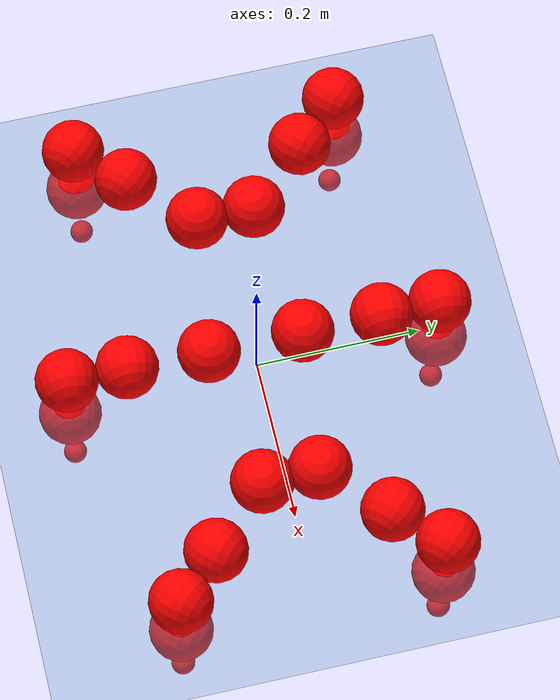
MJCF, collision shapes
<mujoco model="Golem">
  <compiler angle="radian" assetdir="assets" balanceinertia="true" inertiafromgeom="false"/>

  <option timestep="0.005" density="1.2" viscosity="2e-05"/>

  <size nkey="1"/>

  <visual>
    <quality shadowsize="8192"/>
    <map shadowclip="0.5"/>
  </visual>

  <default>
    <default class="/">
      <joint armature="0.01" damping="0.01" frictionloss="0.01"/>
      <geom contype="0" conaffinity="0" group="1" solref="-1000 -80"/>
      <site size="0.01 0.005 0.005" group="5"/>
      <general forcelimited="true" biastype="affine" gainprm="25" biasprm="0 -25 -0.5"/>
      <default class="visual">
        <geom type="mesh" group="2"/>
      </default>
      <default class="collision">
        <geom group="3"/>
      </default>
      <default class="foot">
        <geom size="0.01 0 0" condim="6" group="4" priority="1" solimp="0.015 1 0.01"/>
      </default>
      <default class="reward_collision_sphere">
        <geom group="5" rgba="1 0 0 1"/>
      </default>
    </default>
  </default>

  <asset>
    <texture type="skybox" colorspace="auto" name="//unnamed_texture_0" builtin="gradient" rgb1="0.95 0.95 0.95" rgb2="0.95 0.95 0.95" width="100" height="600"/>
    <texture type="2d" colorspace="auto" name="texplane" builtin="checker" rgb1="0.345 0.575 0.748" rgb2="0.345 0.575 0.748" markrgb="1 1 1" width="512" height="512"/>
    <material name="MatPlane" class="/" texture="texplane" texuniform="true" texrepeat="2 2" specular="0.9"/>
    <mesh name="body" class="/" file="body.stl" scale="0.001 0.001 0.001"/>
    <mesh name="coxa" class="/" file="coxa.stl" scale="0.001 0.001 0.001"/>
    <mesh name="femur" class="/" file="femur.stl" scale="0.001 0.001 0.001"/>
    <mesh name="tibia" class="/" file="tibia.stl" scale="0.001 0.001 0.001"/>
    <mesh name="tarsus" class="/" file="tarsus.stl" scale="0.001 0.001 0.001"/>
  </asset>

  <worldbody>
    <geom name="floor" class="/" size="100 100 0.125" type="plane" group="0" material="MatPlane"/>
    <light name="toplight_shadow" class="/" pos="0 0 5" dir="0.0990148 0.0990148 -0.990148" type="directional" ambient="0.04 0.04 0.04" diffuse="0.55 0.55 0.55" specular="0.12 0.12 0.12"/>
    <light name="toplight_fill" class="/" pos="0 0 5" dir="0.0990148 0.0990148 -0.990148" type="directional" castshadow="false" ambient="0.04 0.04 0.04" diffuse="0.3 0.3 0.3" specular="0.08 0.08 0.08"/>
    <body name="trunk" pos="-0.00094629 0.00108249 -0.000627348" quat="1 -4.90972e-05 0.00011193 0.000105662">
      <inertial pos="0.00113811 -0.000866427 -0.00525701" quat="0.999998 -0.00185594 -0.000807559 -0.000453668" mass="3.19237" diaginertia="0.0170761 0.00154795 0.0123792"/>
      <joint name="//unnamed_joint_0" type="free"/>
      <geom name="//unnamed_geom_1" class="/" pos="0 0 0.0669583" quat="1 0 0 0" type="mesh" rgba="0.9 0.9 0.9 1" mesh="body"/>
      <site name="imu" class="/" pos="0.141599 0.00201834 0.101992" size="0.00947842"/>
      <camera name="track" class="/" pos="0 -1.37556 0" quat="0.707107 0.707107 0 0" mode="trackcom"/>
      <camera name="ego_camera" class="/" pos="0.144238 0 0.104622" quat="-0.5 -0.5 0.5 0.5"/>
      <body name="coxa_RR" pos="-0.197595 -0.0572413 0.068999" quat="0.382824 -0.000242176 -4.04263e-05 -0.923821">
        <inertial pos="-0.000386833 -0.0015499 0.00199814" quat="0.999991 -0.00404975 -0.00128564 -0.000595822" mass="0.171877" diaginertia="0.0169308 0.00156324 0.0125467"/>
        <joint name="coxa_joint_RR" class="/" pos="0 0 0" axis="-0.00229255 -0.00182339 -0.999996" range="-3.13512 3.13449" armature="0.0095332" damping="0.00715999" frictionloss="0.00927657"/>
        <geom name="//unnamed_geom_2" class="/" type="mesh" rgba="0.2 0.2 0.2 1" mesh="coxa"/>
        <geom name="//unnamed_geom_3" class="reward_collision_sphere" size="0.0379137" pos="-0.0332856 0 0"/>
        <body name="femur_RR" pos="0.0679562 0.000800193 -0.00106778" quat="0.499863 -0.500087 0.499922 0.500128">
          <inertial pos="-0.00042844 0.000336045 0.000271053" quat="1 6.66891e-05 0.000399 -0.000196182" mass="0.169354" diaginertia="0.0167271 0.00153562 0.0124903"/>
          <joint name="femur_joint_RR" class="/" pos="0 0 0" axis="0.00148454 -7.71302e-05 -0.999999" range="-3.1323 3.12465" armature="0.00955448" damping="0.00433603" frictionloss="0.00945356"/>
          <geom name="//unnamed_geom_4" class="/" type="mesh" rgba="0.9 0.9 0.9 1" mesh="femur"/>
          <geom name="//unnamed_geom_5" class="reward_collision_sphere" size="0.0379137"/>
          <body name="tibia_RR" pos="0.000522225 -0.0755575 0.00108052" quat="8.47926e-05 1 -4.52414e-05 -0.000253934">
            <inertial pos="-0.0010082 -0.000510265 -0.000275332" quat="0.999992 -0.0037485 -0.000557808 0.000839938" mass="0.168065" diaginertia="0.0167056 0.0015281 0.0126709"/>
            <joint name="tibia_joint_RR" class="/" pos="0 0 0" axis="0.000278223 3.40597e-05 1" range="-3.12054 3.10035" armature="0.00937853" damping="0.00555228" frictionloss="0.00965628"/>
            <geom name="//unnamed_geom_6" class="/" type="mesh" rgba="0.2 0.2 0.2 1" mesh="tibia"/>
            <geom name="//unnamed_geom_7" class="reward_collision_sphere" size="0.0379137"/>
            <body name="tarsus_RR" pos="0.0977327 -0.000531838 -0.000798525" quat="1 7.63228e-06 0.000152853 -9.52154e-05">
              <inertial pos="0.0684407 0.00263701 -0.000650108" quat="0.500846 0.496649 0.503053 0.499431" mass="0.172089" diaginertia="0.0172041 0.00157279 0.0127044"/>
              <joint name="tarsus_joint_RR" class="/" pos="0 0 0" axis="-0.000810413 -0.00818506 0.999966" range="-3.10717 3.14437" armature="0.00905724" damping="0.0430329" frictionloss="0.00907055"/>
              <geom name="//unnamed_geom_8" class="/" type="mesh" rgba="0.9 0.9 0.9 1" mesh="tarsus"/>
              <geom name="foot_1" class="foot" size="0.00904162" pos="0.124266 0 0" quat="0 -0.707107 0 0.707107"/>
              <geom name="//unnamed_geom_10" class="reward_collision_sphere" size="0.0379137"/>
              <geom name="//unnamed_geom_11" class="reward_collision_sphere" size="0.0142176" pos="0.119273 0 0"/>
              <site name="foot_1" class="foot" pos="0.124266 0 0" quat="0 -0.707107 0 0.707107" size="0.00947842"/>
            </body>
          </body>
        </body>
      </body>
      <body name="coxa_RM" pos="-0.000956823 -0.0917069 0.066477" quat="0.707055 -1.47191e-05 9.42287e-05 -0.707158">
        <inertial pos="-0.000212646 -0.000843068 -0.000350366" quat="1 -0.000967925 -0.000199132 -0.000144422" mass="0.170185" diaginertia="0.0167323 0.00153254 0.0124736"/>
        <joint name="coxa_joint_RM" class="/" pos="0 0 0" axis="0.00341723 -0.00405996 -0.999986" range="-3.13746 3.15011" armature="0.00952697" damping="0.00827235" frictionloss="0.00862228"/>
        <geom name="//unnamed_geom_12" class="/" type="mesh" rgba="0.2 0.2 0.2 1" mesh="coxa"/>
        <geom name="//unnamed_geom_13" class="reward_collision_sphere" size="0.0379137" pos="-0.0332856 0 0"/>
        <body name="femur_RM" pos="0.0652892 -0.0012738 0.000611122" quat="0.499852 -0.500002 0.50003 0.500116">
          <inertial pos="-0.000168312 0.00041332 0.000166609" quat="0.999999 -0.00130901 3.56026e-05 0.000418048" mass="0.16834" diaginertia="0.0164695 0.0015444 0.0124259"/>
          <joint name="femur_joint_RM" class="/" pos="0 0 0" axis="0.00138563 -0.000388071 -0.999999" range="-3.14561 3.15537" armature="0.00922079" damping="0" frictionloss="0.00953085"/>
          <geom name="//unnamed_geom_14" class="/" type="mesh" rgba="0.9 0.9 0.9 1" mesh="femur"/>
          <geom name="//unnamed_geom_15" class="reward_collision_sphere" size="0.0379137"/>
          <body name="tibia_RM" pos="0.000990289 -0.0724937 -0.000217247" quat="-3.79517e-05 1 -1.15536e-05 1.17133e-05">
            <inertial pos="-0.00159567 -0.0020081 -0.00095592" quat="0.999966 -0.00715841 0.000205228 0.00397029" mass="0.169478" diaginertia="0.0168182 0.00153752 0.0122747"/>
            <joint name="tibia_joint_RM" class="/" pos="0 0 0" axis="-4.02937e-05 -2.90155e-05 1" range="-3.13747 3.11929" armature="0.00905888" damping="0.011107" frictionloss="0.00915509"/>
            <geom name="//unnamed_geom_16" class="/" type="mesh" rgba="0.2 0.2 0.2 1" mesh="tibia"/>
            <geom name="//unnamed_geom_17" class="reward_collision_sphere" size="0.0379137"/>
            <body name="tarsus_RM" pos="0.0977385 0.000893633 -2.35276e-05" quat="1 -8.7365e-05 -0.000120637 -2.19436e-05">
              <inertial pos="0.0666665 0.000107645 1.18162e-05" quat="0.499669 0.501067 0.501203 0.498055" mass="0.169646" diaginertia="0.0165364 0.00152709 0.0124884"/>
              <joint name="tarsus_joint_RM" class="/" pos="0 0 0" axis="1.64883e-05 -8.44908e-05 1" range="-3.14018 3.1427" armature="0.00889714" damping="0.00639293" frictionloss="0.00972874"/>
              <geom name="//unnamed_geom_18" class="/" type="mesh" rgba="0.9 0.9 0.9 1" mesh="tarsus"/>
              <geom name="foot_2" class="foot" size="0.00948135" pos="0.124266 0 0" quat="0 -0.707107 0 0.707107"/>
              <geom name="//unnamed_geom_20" class="reward_collision_sphere" size="0.0379137"/>
              <geom name="//unnamed_geom_21" class="reward_collision_sphere" size="0.0142176" pos="0.119273 0 0"/>
              <site name="foot_2" class="foot" pos="0.124266 0 0" quat="0 -0.707107 0 0.707107" size="0.00947842"/>
            </body>
          </body>
        </body>
      </body>
      <body name="coxa_RF" pos="0.197814 -0.0583718 0.0663804" quat="0.923935 -7.24699e-05 -6.14694e-05 -0.382549">
        <inertial pos="0.00101437 -4.25626e-05 0.000124786" quat="0.999997 0.00100431 0.000637642 0.00213211" mass="0.171311" diaginertia="0.0171618 0.00154285 0.0124176"/>
        <joint name="coxa_joint_RF" class="/" pos="0 0 0" axis="0.00130279 -0.000443733 -0.999999" stiffness="0.000997702" range="-3.12714 3.12711" armature="0.00993865" damping="0.00824276" frictionloss="0.0092532"/>
        <geom name="//unnamed_geom_22" class="/" type="mesh" rgba="0.2 0.2 0.2 1" mesh="coxa"/>
        <geom name="//unnamed_geom_23" class="reward_collision_sphere" size="0.0379137" pos="-0.0332856 0 0"/>
        <body name="femur_RF" pos="0.0671674 -0.000532036 -0.00161208" quat="0.499779 -0.500104 0.499923 0.500194">
          <inertial pos="-0.000609476 -0.000293929 -0.000180116" quat="0.999996 0.0020704 -0.00191647 -0.000390537" mass="0.169589" diaginertia="0.016912 0.00156387 0.0124551"/>
          <joint name="femur_joint_RF" class="/" pos="0 0 0" axis="-0.000988933 0.000885618 -0.999999" range="-3.12272 3.13774" armature="0.00935227" damping="0" frictionloss="0.00904954"/>
          <geom name="//unnamed_geom_24" class="/" type="mesh" rgba="0.9 0.9 0.9 1" mesh="femur"/>
          <geom name="//unnamed_geom_25" class="reward_collision_sphere" size="0.0379137"/>
          <body name="tibia_RF" pos="-0.000170242 -0.0735183 -0.00102506" quat="4.51243e-05 1 2.14834e-05 -1.63541e-05">
            <inertial pos="-0.000836805 -3.07044e-05 -0.00032095" quat="0.999996 0.00201252 -0.00217646 0.000238349" mass="0.170835" diaginertia="0.0172266 0.0015544 0.012603"/>
            <joint name="tibia_joint_RF" class="/" pos="0 0 0" axis="0.000202111 0.00021287 1" range="-3.12757 3.13945" armature="0.00906142" damping="0.0127247" frictionloss="0.009284"/>
            <geom name="//unnamed_geom_26" class="/" type="mesh" rgba="0.2 0.2 0.2 1" mesh="tibia"/>
            <geom name="//unnamed_geom_27" class="reward_collision_sphere" size="0.0379137"/>
            <body name="tarsus_RF" pos="0.0965973 0.000865496 0.00138339" quat="1 -0.000278148 -0.000593082 0.000316403">
              <inertial pos="0.0665073 -0.00129729 0.000187223" quat="0.50666 0.494691 0.501392 0.497175" mass="0.169117" diaginertia="0.0170245 0.00150166 0.0124886"/>
              <joint name="tarsus_joint_RF" class="/" pos="0 0 0" axis="-0.00163536 0.002698 0.999995" range="-3.11152 3.12753" armature="0.0103938" damping="0" frictionloss="0.00946208"/>
              <geom name="//unnamed_geom_28" class="/" type="mesh" rgba="0.9 0.9 0.9 1" mesh="tarsus"/>
              <geom name="foot_3" class="foot" size="0.00980443" pos="0.124266 0 0" quat="0 -0.707107 0 0.707107"/>
              <geom name="//unnamed_geom_30" class="reward_collision_sphere" size="0.0379137"/>
              <geom name="//unnamed_geom_31" class="reward_collision_sphere" size="0.0142176" pos="0.119273 0 0"/>
              <site name="foot_3" class="foot" pos="0.124266 0 0" quat="0 -0.707107 0 0.707107" size="0.00947842"/>
            </body>
          </body>
        </body>
      </body>
      <body name="coxa_LR" pos="-0.196971 0.0595691 0.0687906" quat="0.382641 -0.000633311 5.54592e-05 0.923897">
        <inertial pos="0.000809626 -0.00193347 -0.000439842" quat="0.999998 0.00121492 0.000159779 -0.00134228" mass="0.167433" diaginertia="0.0165624 0.00153411 0.0122485"/>
        <joint name="coxa_joint_LR" class="/" pos="0 0 0" axis="0.00226659 0.000702551 -0.999997" range="-3.11956 3.167" armature="0.0089282" damping="0.0075325" frictionloss="0.00929533"/>
        <geom name="//unnamed_geom_32" class="/" type="mesh" rgba="0.2 0.2 0.2 1" mesh="coxa"/>
        <geom name="//unnamed_geom_33" class="reward_collision_sphere" size="0.0379137" pos="-0.0332856 0 0"/>
        <body name="femur_LR" pos="0.0690928 -0.00180825 -0.00108227" quat="0.50002 -0.50003 0.499936 0.500014">
          <inertial pos="-0.000824222 0.000100786 -0.000337235" quat="0.999975 -0.00198231 0.00677088 0.000402548" mass="0.170933" diaginertia="0.0167849 0.00153245 0.0127709"/>
          <joint name="femur_joint_LR" class="/" pos="0 0 0" axis="0.00269395 0.000908099 0.999996" range="-3.10344 3.13145" armature="0.00919053" damping="0.00499293" frictionloss="0.00922895"/>
          <geom name="//unnamed_geom_34" class="/" type="mesh" rgba="0.9 0.9 0.9 1" mesh="femur"/>
          <geom name="//unnamed_geom_35" class="reward_collision_sphere" size="0.0379137"/>
          <body name="tibia_LR" pos="-9.88314e-05 -0.0754192 -0.00176137" quat="0.000398067 1 -0.000279607 1.49758e-05">
            <inertial pos="-0.000578214 -0.00141367 0.000361512" quat="0.999995 -0.00140774 -0.00228552 -0.00180557" mass="0.169833" diaginertia="0.0166836 0.0015149 0.0124987"/>
            <joint name="tibia_joint_LR" class="/" pos="0 0 0" axis="-0.00310375 -4.48639e-05 -0.999995" range="-3.14724 3.12425" armature="0.00977633" damping="0" frictionloss="0.00922578"/>
            <geom name="//unnamed_geom_36" class="/" type="mesh" rgba="0.2 0.2 0.2 1" mesh="tibia"/>
            <geom name="//unnamed_geom_37" class="reward_collision_sphere" size="0.0379137"/>
            <body name="tarsus_LR" pos="0.0986738 0.000769544 0.000307927" quat="1 0.000105275 -2.223e-06 -0.000360354">
              <inertial pos="0.066951 8.92232e-05 0.00030072" quat="0.499 0.500198 0.501615 0.499182" mass="0.168115" diaginertia="0.0166606 0.00152732 0.0123688"/>
              <joint name="tarsus_joint_LR" class="/" pos="0 0 0" axis="0.000908707 -0.0030033 -0.999995" range="-3.15614 3.13569" armature="0.00949428" damping="0.0285666" frictionloss="0.00898398"/>
              <geom name="//unnamed_geom_38" class="/" type="mesh" rgba="0.9 0.9 0.9 1" mesh="tarsus"/>
              <geom name="foot_4" class="foot" size="0.00936288" pos="0.124266 0 0" quat="0.707107 0 -0.707107 0"/>
              <geom name="//unnamed_geom_40" class="reward_collision_sphere" size="0.0379137"/>
              <geom name="//unnamed_geom_41" class="reward_collision_sphere" size="0.0142176" pos="0.119273 0 0"/>
              <site name="foot_4" class="foot" pos="0.124266 0 0" quat="0.707107 0 -0.707107 0" size="0.00947842"/>
            </body>
          </body>
        </body>
      </body>
      <body name="coxa_LM" pos="-0.0010765 0.0886516 0.0677135" quat="0.706833 -7.11776e-05 0.000328876 0.70738">
        <inertial pos="-0.000230568 0.000541436 0.000910385" quat="0.999999 0.000784165 -0.000597107 0.000417553" mass="0.172516" diaginertia="0.0167802 0.00151993 0.0127999"/>
        <joint name="coxa_joint_LM" class="/" pos="0 0 0" axis="-6.13921e-05 -0.00193415 -0.999998" stiffness="0.00423761" range="-3.13866 3.13988" armature="0.0100929" damping="0.00359904" frictionloss="0.0096799"/>
        <geom name="//unnamed_geom_42" class="/" type="mesh" rgba="0.2 0.2 0.2 1" mesh="coxa"/>
        <geom name="//unnamed_geom_43" class="reward_collision_sphere" size="0.0379137" pos="-0.0332856 0 0"/>
        <body name="femur_LM" pos="0.0626731 -0.000403115 0.000141631" quat="0.499985 -0.499875 0.500136 0.500003">
          <inertial pos="0.000328838 -0.001002 0.00103625" quat="0.999999 0.000715756 0.000369637 0.00130308" mass="0.170191" diaginertia="0.0166032 0.00153533 0.0126781"/>
          <joint name="femur_joint_LM" class="/" pos="0 0 0" axis="0.00175616 0.00728118 0.999972" range="-3.12847 3.13438" armature="0.00897272" damping="0.00641222" frictionloss="0.00933766"/>
          <geom name="//unnamed_geom_44" class="/" type="mesh" rgba="0.9 0.9 0.9 1" mesh="femur"/>
          <geom name="//unnamed_geom_45" class="reward_collision_sphere" size="0.0379137"/>
          <body name="tibia_LM" pos="0.00180277 -0.071781 0.00166555" quat="-8.6839e-05 1 0.000184232 9.50644e-06">
            <inertial pos="0.000698039 -0.00201729 0.00181832" quat="0.999958 0.00219104 0.00615816 0.00636457" mass="0.167517" diaginertia="0.0169738 0.00151703 0.0124731"/>
            <joint name="tibia_joint_LM" class="/" pos="0 0 0" axis="-3.94079e-05 3.10783e-06 -1" range="-3.13401 3.11752" armature="0.00916094" damping="0.00439112" frictionloss="0.00937468"/>
            <geom name="//unnamed_geom_46" class="/" type="mesh" rgba="0.2 0.2 0.2 1" mesh="tibia"/>
            <geom name="//unnamed_geom_47" class="reward_collision_sphere" size="0.0379137"/>
            <body name="tarsus_LM" pos="0.0981388 0.000277832 0.000149862" quat="1 -5.75539e-05 0.000345838 0.00023896">
              <inertial pos="0.0677425 5.47304e-05 -0.000652915" quat="0.494807 0.498586 0.505111 0.501439" mass="0.173409" diaginertia="0.0169102 0.00154692 0.0127001"/>
              <joint name="tarsus_joint_LM" class="/" pos="0 0 0" axis="-0.00242738 -0.00264234 -0.999994" range="-3.13915 3.11979" armature="0.00988536" damping="0" frictionloss="0.00951982"/>
              <geom name="//unnamed_geom_48" class="/" type="mesh" rgba="0.9 0.9 0.9 1" mesh="tarsus"/>
              <geom name="foot_5" class="foot" size="0.00955782" pos="0.124266 0 0" quat="0.707107 0 -0.707107 0"/>
              <geom name="//unnamed_geom_50" class="reward_collision_sphere" size="0.0379137"/>
              <geom name="//unnamed_geom_51" class="reward_collision_sphere" size="0.0142176" pos="0.119273 0 0"/>
              <site name="foot_5" class="foot" pos="0.124266 0 0" quat="0.707107 0 -0.707107 0" size="0.00947842"/>
            </body>
          </body>
        </body>
      </body>
      <body name="coxa_LF" pos="0.196678 0.057673 0.0677734" quat="0.923775 0.000429044 0.000255829 0.382935">
        <inertial pos="-0.000530999 0.000361549 -0.000739621" quat="0.999959 -0.00802294 0.000168977 0.00420038" mass="0.174274" diaginertia="0.0170939 0.00157094 0.0123288"/>
        <joint name="coxa_joint_LF" class="/" pos="0 0 0" axis="-0.000974739 -0.00127033 -0.999999" range="-3.13827 3.1349" armature="0.00954422" damping="0.00360856" frictionloss="0.00959054"/>
        <geom name="//unnamed_geom_52" class="/" type="mesh" rgba="0.2 0.2 0.2 1" mesh="coxa"/>
        <geom name="//unnamed_geom_53" class="reward_collision_sphere" size="0.0379137" pos="-0.0332856 0 0"/>
        <body name="femur_LF" pos="0.0652046 -0.000423155 -0.000819899" quat="0.50034 -0.499806 0.499933 0.49992">
          <inertial pos="0.00102129 0.000870571 0.00133937" quat="0.999991 0.00293481 0.00272798 0.00136147" mass="0.168322" diaginertia="0.0166646 0.0015355 0.0122771"/>
          <joint name="femur_joint_LF" class="/" pos="0 0 0" axis="-0.0060709 -0.000386765 0.999981" stiffness="0.000154703" range="-3.14374 3.17587" armature="0.00938439" damping="0" frictionloss="0.00948433"/>
          <geom name="//unnamed_geom_54" class="/" type="mesh" rgba="0.9 0.9 0.9 1" mesh="femur"/>
          <geom name="//unnamed_geom_55" class="reward_collision_sphere" size="0.0379137"/>
          <body name="tibia_LF" pos="0.00142916 -0.0738643 0.000589955" quat="-9.58908e-05 1 -3.89636e-05 -1.19704e-05">
            <inertial pos="-0.000206258 -0.000492321 0.000202487" quat="0.999999 -0.000320683 0.0012416 0.000926176" mass="0.170041" diaginertia="0.0168184 0.0015339 0.0125087"/>
            <joint name="tibia_joint_LF" class="/" pos="0 0 0" axis="0.000578674 -0.000578896 -1" range="-3.12029 3.13405" armature="0.00888871" damping="0" frictionloss="0.00915434"/>
            <geom name="//unnamed_geom_56" class="/" type="mesh" rgba="0.2 0.2 0.2 1" mesh="tibia"/>
            <geom name="//unnamed_geom_57" class="reward_collision_sphere" size="0.0379137"/>
            <body name="tarsus_LF" pos="0.0976808 -8.30596e-05 0.000494769" quat="1 0.000441529 0.000219284 2.5646e-05">
              <inertial pos="0.06695 -0.000943713 3.0426e-05" quat="0.500022 0.499688 0.50068 0.499609" mass="0.168967" diaginertia="0.0169648 0.00154936 0.0125291"/>
              <joint name="tarsus_joint_LF" class="/" pos="0 0 0" axis="0.00217961 -0.00554563 -0.999982" stiffness="0.024088" range="-3.1628 3.16553" armature="0.00945818" damping="0.000263169" frictionloss="0.00940318"/>
              <geom name="//unnamed_geom_58" class="/" type="mesh" rgba="0.9 0.9 0.9 1" mesh="tarsus"/>
              <geom name="foot_6" class="foot" size="0.00915701" pos="0.124266 0 0" quat="0.707107 0 -0.707107 0"/>
              <geom name="//unnamed_geom_60" class="reward_collision_sphere" size="0.0379137"/>
              <geom name="//unnamed_geom_61" class="reward_collision_sphere" size="0.0142176" pos="0.119273 0 0"/>
              <site name="foot_6" class="foot" pos="0.124266 0 0" quat="0.707107 0 -0.707107 0" size="0.00947842"/>
            </body>
          </body>
        </body>
      </body>
    </body>
  </worldbody>

  <contact>
    <pair class="/" geom1="floor" geom2="foot_1" name="//unnamed_contact_0"/>
    <pair class="/" geom1="floor" geom2="foot_2" name="//unnamed_contact_1"/>
    <pair class="/" geom1="floor" geom2="foot_3" name="//unnamed_contact_2"/>
    <pair class="/" geom1="floor" geom2="foot_4" name="//unnamed_contact_3"/>
    <pair class="/" geom1="floor" geom2="foot_5" name="//unnamed_contact_4"/>
    <pair class="/" geom1="floor" geom2="foot_6" name="//unnamed_contact_5"/>
  </contact>

  <actuator>
    <general name="coxa_joint_RR" class="/" joint="coxa_joint_RR" forcerange="-6.66971 6.66971" gainprm="22.9852" biasprm="0 -22.9852 -0.485962"/>
    <general name="femur_joint_RR" class="/" joint="femur_joint_RR" forcerange="-7.15217 7.15217" gainprm="22.9852" biasprm="0 -22.9852 -0.485962"/>
    <general name="tibia_joint_RR" class="/" joint="tibia_joint_RR" forcerange="-6.5199 6.5199" gainprm="22.9852" biasprm="0 -22.9852 -0.485962"/>
    <general name="tarsus_joint_RR" class="/" joint="tarsus_joint_RR" forcerange="-7.03665 7.03665" gainprm="22.9852" biasprm="0 -22.9852 -0.485962"/>
    <general name="coxa_joint_RM" class="/" joint="coxa_joint_RM" forcerange="-6.92819 6.92819" gainprm="22.9852" biasprm="0 -22.9852 -0.485962"/>
    <general name="femur_joint_RM" class="/" joint="femur_joint_RM" forcerange="-6.92521 6.92521" gainprm="22.9852" biasprm="0 -22.9852 -0.485962"/>
    <general name="tibia_joint_RM" class="/" joint="tibia_joint_RM" forcerange="-6.44903 6.44903" gainprm="22.9852" biasprm="0 -22.9852 -0.485962"/>
    <general name="tarsus_joint_RM" class="/" joint="tarsus_joint_RM" forcerange="-7.07932 7.07932" gainprm="22.9852" biasprm="0 -22.9852 -0.485962"/>
    <general name="coxa_joint_RF" class="/" joint="coxa_joint_RF" forcerange="-6.89159 6.89159" gainprm="22.9852" biasprm="0 -22.9852 -0.485962"/>
    <general name="femur_joint_RF" class="/" joint="femur_joint_RF" forcerange="-7.39448 7.39448" gainprm="22.9852" biasprm="0 -22.9852 -0.485962"/>
    <general name="tibia_joint_RF" class="/" joint="tibia_joint_RF" forcerange="-6.68988 6.68988" gainprm="22.9852" biasprm="0 -22.9852 -0.485962"/>
    <general name="tarsus_joint_RF" class="/" joint="tarsus_joint_RF" forcerange="-7.38567 7.38567" gainprm="22.9852" biasprm="0 -22.9852 -0.485962"/>
    <general name="coxa_joint_LR" class="/" joint="coxa_joint_LR" forcerange="-6.76202 6.76202" gainprm="22.9852" biasprm="0 -22.9852 -0.485962"/>
    <general name="femur_joint_LR" class="/" joint="femur_joint_LR" forcerange="-6.6831 6.6831" gainprm="22.9852" biasprm="0 -22.9852 -0.485962"/>
    <general name="tibia_joint_LR" class="/" joint="tibia_joint_LR" forcerange="-6.75202 6.75202" gainprm="22.9852" biasprm="0 -22.9852 -0.485962"/>
    <general name="tarsus_joint_LR" class="/" joint="tarsus_joint_LR" forcerange="-6.92069 6.92069" gainprm="22.9852" biasprm="0 -22.9852 -0.485962"/>
    <general name="coxa_joint_LM" class="/" joint="coxa_joint_LM" forcerange="-6.67509 6.67509" gainprm="22.9852" biasprm="0 -22.9852 -0.485962"/>
    <general name="femur_joint_LM" class="/" joint="femur_joint_LM" forcerange="-6.95797 6.95797" gainprm="22.9852" biasprm="0 -22.9852 -0.485962"/>
    <general name="tibia_joint_LM" class="/" joint="tibia_joint_LM" forcerange="-6.57967 6.57967" gainprm="22.9852" biasprm="0 -22.9852 -0.485962"/>
    <general name="tarsus_joint_LM" class="/" joint="tarsus_joint_LM" forcerange="-6.95618 6.95618" gainprm="22.9852" biasprm="0 -22.9852 -0.485962"/>
    <general name="coxa_joint_LF" class="/" joint="coxa_joint_LF" forcerange="-6.69937 6.69937" gainprm="22.9852" biasprm="0 -22.9852 -0.485962"/>
    <general name="femur_joint_LF" class="/" joint="femur_joint_LF" forcerange="-6.71846 6.71846" gainprm="22.9852" biasprm="0 -22.9852 -0.485962"/>
    <general name="tibia_joint_LF" class="/" joint="tibia_joint_LF" forcerange="-6.83598 6.83598" gainprm="22.9852" biasprm="0 -22.9852 -0.485962"/>
    <general name="tarsus_joint_LF" class="/" joint="tarsus_joint_LF" forcerange="-6.91596 6.91596" gainprm="22.9852" biasprm="0 -22.9852 -0.485962"/>
  </actuator>

  <sensor>
    <gyro site="imu" name="imu_angular_velocity"/>
    <velocimeter site="imu" name="imu_linear_velocity"/>
    <framelinvel objtype="site" objname="foot_1" name="foot_1_global_linear_velocity"/>
    <framelinvel objtype="site" objname="foot_2" name="foot_2_global_linear_velocity"/>
    <framelinvel objtype="site" objname="foot_3" name="foot_3_global_linear_velocity"/>
    <framelinvel objtype="site" objname="foot_4" name="foot_4_global_linear_velocity"/>
    <framelinvel objtype="site" objname="foot_5" name="foot_5_global_linear_velocity"/>
    <framelinvel objtype="site" objname="foot_6" name="foot_6_global_linear_velocity"/>
  </sensor>

  <keyframe>
    <key name="home" qpos="0 0 0.1457 1 0 0 0 0 0 0 0 0 0 0 0 0 0 0 0 0 0 0 0 0 0 0 0 0 0 0 0"/>
  </keyframe>
</mujoco>
